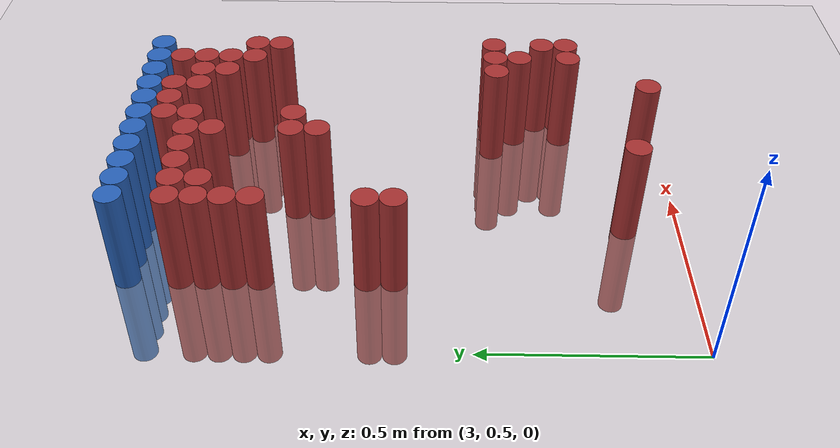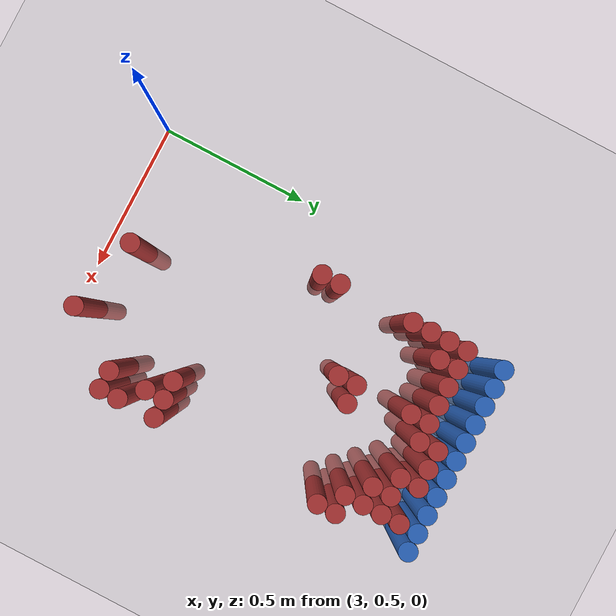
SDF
<sdf version="1.6">
 <world name="default">
  <model name="ground_plane">
   <static>1</static>
   <link name="link">
    <collision name="collision">
     <geometry><plane><normal>0 0 1</normal><size>100 100</size></plane></geometry>
     <surface><friction><ode><mu>100</mu><mu2>50</mu2></ode></friction></surface>
    </collision>
    <visual name="visual">
     <cast_shadows>0</cast_shadows>
     <geometry><plane><normal>0 0 1</normal><size>100 100</size></plane></geometry>
     <material>
      <script><uri>file://media/materials/scripts/gazebo.material</uri><name>Gazebo/Grey</name></script>
     </material>
    </visual>
   </link>
  </model>
  <model name="unit_cylinder_114">
   <static>1</static>
   <pose>3.210000 1.770000 0.000000 0.000000 0.000000 0.000000</pose>
   <link name="link">
    <inertial>
     <mass>1</mass>
     <inertia><ixx>0.145833</ixx><ixy>0</ixy><ixz>0</ixz><iyy>0.145833</iyy><iyz>0</iyz><izz>0.125</izz></inertia>
    </inertial>
    <collision name="collision">
     <geometry><cylinder><radius>0.030000</radius><length>0.5</length></cylinder></geometry>
    </collision>
    <visual name="visual">
     <geometry><cylinder><radius>0.030000</radius><length>0.5</length></cylinder></geometry>
     <material>
      <ambient>0.152000 0.379000 0.720000 1</ambient>
      <diffuse>0.152000 0.379000 0.720000 1</diffuse>
     </material>
     <material>
      <script><name>Gazebo/Grey</name><uri>file://media/materials/scripts/gazebo.material</uri></script>
     </material>
    </visual>
   </link>
  </model>
  <model name="unit_cylinder_115">
   <static>1</static>
   <pose>3.270000 1.770000 0.000000 0.000000 0.000000 0.000000</pose>
   <link name="link">
    <inertial>
     <mass>1</mass>
     <inertia><ixx>0.145833</ixx><ixy>0</ixy><ixz>0</ixz><iyy>0.145833</iyy><iyz>0</iyz><izz>0.125</izz></inertia>
    </inertial>
    <collision name="collision">
     <geometry><cylinder><radius>0.030000</radius><length>0.5</length></cylinder></geometry>
    </collision>
    <visual name="visual">
     <geometry><cylinder><radius>0.030000</radius><length>0.5</length></cylinder></geometry>
     <material>
      <ambient>0.152000 0.379000 0.720000 1</ambient>
      <diffuse>0.152000 0.379000 0.720000 1</diffuse>
     </material>
     <material>
      <script><name>Gazebo/Grey</name><uri>file://media/materials/scripts/gazebo.material</uri></script>
     </material>
    </visual>
   </link>
  </model>
  <model name="unit_cylinder_116">
   <static>1</static>
   <pose>3.330000 1.770000 0.000000 0.000000 0.000000 0.000000</pose>
   <link name="link">
    <inertial>
     <mass>1</mass>
     <inertia><ixx>0.145833</ixx><ixy>0</ixy><ixz>0</ixz><iyy>0.145833</iyy><iyz>0</iyz><izz>0.125</izz></inertia>
    </inertial>
    <collision name="collision">
     <geometry><cylinder><radius>0.030000</radius><length>0.5</length></cylinder></geometry>
    </collision>
    <visual name="visual">
     <geometry><cylinder><radius>0.030000</radius><length>0.5</length></cylinder></geometry>
     <material>
      <ambient>0.152000 0.379000 0.720000 1</ambient>
      <diffuse>0.152000 0.379000 0.720000 1</diffuse>
     </material>
     <material>
      <script><name>Gazebo/Grey</name><uri>file://media/materials/scripts/gazebo.material</uri></script>
     </material>
    </visual>
   </link>
  </model>
  <model name="unit_cylinder_117">
   <static>1</static>
   <pose>3.390000 1.770000 0.000000 0.000000 0.000000 0.000000</pose>
   <link name="link">
    <inertial>
     <mass>1</mass>
     <inertia><ixx>0.145833</ixx><ixy>0</ixy><ixz>0</ixz><iyy>0.145833</iyy><iyz>0</iyz><izz>0.125</izz></inertia>
    </inertial>
    <collision name="collision">
     <geometry><cylinder><radius>0.030000</radius><length>0.5</length></cylinder></geometry>
    </collision>
    <visual name="visual">
     <geometry><cylinder><radius>0.030000</radius><length>0.5</length></cylinder></geometry>
     <material>
      <ambient>0.152000 0.379000 0.720000 1</ambient>
      <diffuse>0.152000 0.379000 0.720000 1</diffuse>
     </material>
     <material>
      <script><name>Gazebo/Grey</name><uri>file://media/materials/scripts/gazebo.material</uri></script>
     </material>
    </visual>
   </link>
  </model>
  <model name="unit_cylinder_118">
   <static>1</static>
   <pose>3.450000 1.770000 0.000000 0.000000 0.000000 0.000000</pose>
   <link name="link">
    <inertial>
     <mass>1</mass>
     <inertia><ixx>0.145833</ixx><ixy>0</ixy><ixz>0</ixz><iyy>0.145833</iyy><iyz>0</iyz><izz>0.125</izz></inertia>
    </inertial>
    <collision name="collision">
     <geometry><cylinder><radius>0.030000</radius><length>0.5</length></cylinder></geometry>
    </collision>
    <visual name="visual">
     <geometry><cylinder><radius>0.030000</radius><length>0.5</length></cylinder></geometry>
     <material>
      <ambient>0.152000 0.379000 0.720000 1</ambient>
      <diffuse>0.152000 0.379000 0.720000 1</diffuse>
     </material>
     <material>
      <script><name>Gazebo/Grey</name><uri>file://media/materials/scripts/gazebo.material</uri></script>
     </material>
    </visual>
   </link>
  </model>
  <model name="unit_cylinder_119">
   <static>1</static>
   <pose>3.510000 1.770000 0.000000 0.000000 0.000000 0.000000</pose>
   <link name="link">
    <inertial>
     <mass>1</mass>
     <inertia><ixx>0.145833</ixx><ixy>0</ixy><ixz>0</ixz><iyy>0.145833</iyy><iyz>0</iyz><izz>0.125</izz></inertia>
    </inertial>
    <collision name="collision">
     <geometry><cylinder><radius>0.030000</radius><length>0.5</length></cylinder></geometry>
    </collision>
    <visual name="visual">
     <geometry><cylinder><radius>0.030000</radius><length>0.5</length></cylinder></geometry>
     <material>
      <ambient>0.152000 0.379000 0.720000 1</ambient>
      <diffuse>0.152000 0.379000 0.720000 1</diffuse>
     </material>
     <material>
      <script><name>Gazebo/Grey</name><uri>file://media/materials/scripts/gazebo.material</uri></script>
     </material>
    </visual>
   </link>
  </model>
  <model name="unit_cylinder_120">
   <static>1</static>
   <pose>3.570000 1.770000 0.000000 0.000000 0.000000 0.000000</pose>
   <link name="link">
    <inertial>
     <mass>1</mass>
     <inertia><ixx>0.145833</ixx><ixy>0</ixy><ixz>0</ixz><iyy>0.145833</iyy><iyz>0</iyz><izz>0.125</izz></inertia>
    </inertial>
    <collision name="collision">
     <geometry><cylinder><radius>0.030000</radius><length>0.5</length></cylinder></geometry>
    </collision>
    <visual name="visual">
     <geometry><cylinder><radius>0.030000</radius><length>0.5</length></cylinder></geometry>
     <material>
      <ambient>0.152000 0.379000 0.720000 1</ambient>
      <diffuse>0.152000 0.379000 0.720000 1</diffuse>
     </material>
     <material>
      <script><name>Gazebo/Grey</name><uri>file://media/materials/scripts/gazebo.material</uri></script>
     </material>
    </visual>
   </link>
  </model>
  <model name="unit_cylinder_121">
   <static>1</static>
   <pose>3.630000 1.770000 0.000000 0.000000 0.000000 0.000000</pose>
   <link name="link">
    <inertial>
     <mass>1</mass>
     <inertia><ixx>0.145833</ixx><ixy>0</ixy><ixz>0</ixz><iyy>0.145833</iyy><iyz>0</iyz><izz>0.125</izz></inertia>
    </inertial>
    <collision name="collision">
     <geometry><cylinder><radius>0.030000</radius><length>0.5</length></cylinder></geometry>
    </collision>
    <visual name="visual">
     <geometry><cylinder><radius>0.030000</radius><length>0.5</length></cylinder></geometry>
     <material>
      <ambient>0.152000 0.379000 0.720000 1</ambient>
      <diffuse>0.152000 0.379000 0.720000 1</diffuse>
     </material>
     <material>
      <script><name>Gazebo/Grey</name><uri>file://media/materials/scripts/gazebo.material</uri></script>
     </material>
    </visual>
   </link>
  </model>
  <model name="unit_cylinder_122">
   <static>1</static>
   <pose>3.690000 1.770000 0.000000 0.000000 0.000000 0.000000</pose>
   <link name="link">
    <inertial>
     <mass>1</mass>
     <inertia><ixx>0.145833</ixx><ixy>0</ixy><ixz>0</ixz><iyy>0.145833</iyy><iyz>0</iyz><izz>0.125</izz></inertia>
    </inertial>
    <collision name="collision">
     <geometry><cylinder><radius>0.030000</radius><length>0.5</length></cylinder></geometry>
    </collision>
    <visual name="visual">
     <geometry><cylinder><radius>0.030000</radius><length>0.5</length></cylinder></geometry>
     <material>
      <ambient>0.152000 0.379000 0.720000 1</ambient>
      <diffuse>0.152000 0.379000 0.720000 1</diffuse>
     </material>
     <material>
      <script><name>Gazebo/Grey</name><uri>file://media/materials/scripts/gazebo.material</uri></script>
     </material>
    </visual>
   </link>
  </model>
  <model name="unit_cylinder_123">
   <static>1</static>
   <pose>3.750000 1.770000 0.000000 0.000000 0.000000 0.000000</pose>
   <link name="link">
    <inertial>
     <mass>1</mass>
     <inertia><ixx>0.145833</ixx><ixy>0</ixy><ixz>0</ixz><iyy>0.145833</iyy><iyz>0</iyz><izz>0.125</izz></inertia>
    </inertial>
    <collision name="collision">
     <geometry><cylinder><radius>0.030000</radius><length>0.5</length></cylinder></geometry>
    </collision>
    <visual name="visual">
     <geometry><cylinder><radius>0.030000</radius><length>0.5</length></cylinder></geometry>
     <material>
      <ambient>0.152000 0.379000 0.720000 1</ambient>
      <diffuse>0.152000 0.379000 0.720000 1</diffuse>
     </material>
     <material>
      <script><name>Gazebo/Grey</name><uri>file://media/materials/scripts/gazebo.material</uri></script>
     </material>
    </visual>
   </link>
  </model>
  <model name="unit_cylinder_124">
   <static>1</static>
   <pose>3.810000 1.770000 0.000000 0.000000 0.000000 0.000000</pose>
   <link name="link">
    <inertial>
     <mass>1</mass>
     <inertia><ixx>0.145833</ixx><ixy>0</ixy><ixz>0</ixz><iyy>0.145833</iyy><iyz>0</iyz><izz>0.125</izz></inertia>
    </inertial>
    <collision name="collision">
     <geometry><cylinder><radius>0.030000</radius><length>0.5</length></cylinder></geometry>
    </collision>
    <visual name="visual">
     <geometry><cylinder><radius>0.030000</radius><length>0.5</length></cylinder></geometry>
     <material>
      <ambient>0.152000 0.379000 0.720000 1</ambient>
      <diffuse>0.152000 0.379000 0.720000 1</diffuse>
     </material>
     <material>
      <script><name>Gazebo/Grey</name><uri>file://media/materials/scripts/gazebo.material</uri></script>
     </material>
    </visual>
   </link>
  </model>
  <model name="unit_cylinder_135">
   <static>1</static>
   <pose>3.510000 1.710000 0.000000 0.000000 0.000000 0.000000</pose>
   <link name="link">
    <inertial>
     <mass>1</mass>
     <inertia><ixx>0.145833</ixx><ixy>0</ixy><ixz>0</ixz><iyy>0.145833</iyy><iyz>0</iyz><izz>0.125</izz></inertia>
    </inertial>
    <collision name="collision">
     <geometry><cylinder><radius>0.030000</radius><length>0.5</length></cylinder></geometry>
    </collision>
    <visual name="visual">
     <geometry><cylinder><radius>0.030000</radius><length>0.5</length></cylinder></geometry>
     <material>
      <ambient>0.648000 0.192000 0.192000 1</ambient>
      <diffuse>0.648000 0.192000 0.192000 1</diffuse>
     </material>
     <material>
      <script><name>Gazebo/Grey</name><uri>file://media/materials/scripts/gazebo.material</uri></script>
     </material>
    </visual>
   </link>
  </model>
  <model name="unit_cylinder_136">
   <static>1</static>
   <pose>3.570000 1.710000 0.000000 0.000000 0.000000 0.000000</pose>
   <link name="link">
    <inertial>
     <mass>1</mass>
     <inertia><ixx>0.145833</ixx><ixy>0</ixy><ixz>0</ixz><iyy>0.145833</iyy><iyz>0</iyz><izz>0.125</izz></inertia>
    </inertial>
    <collision name="collision">
     <geometry><cylinder><radius>0.030000</radius><length>0.5</length></cylinder></geometry>
    </collision>
    <visual name="visual">
     <geometry><cylinder><radius>0.030000</radius><length>0.5</length></cylinder></geometry>
     <material>
      <ambient>0.648000 0.192000 0.192000 1</ambient>
      <diffuse>0.648000 0.192000 0.192000 1</diffuse>
     </material>
     <material>
      <script><name>Gazebo/Grey</name><uri>file://media/materials/scripts/gazebo.material</uri></script>
     </material>
    </visual>
   </link>
  </model>
  <model name="unit_cylinder_137">
   <static>1</static>
   <pose>3.630000 1.710000 0.000000 0.000000 0.000000 0.000000</pose>
   <link name="link">
    <inertial>
     <mass>1</mass>
     <inertia><ixx>0.145833</ixx><ixy>0</ixy><ixz>0</ixz><iyy>0.145833</iyy><iyz>0</iyz><izz>0.125</izz></inertia>
    </inertial>
    <collision name="collision">
     <geometry><cylinder><radius>0.030000</radius><length>0.5</length></cylinder></geometry>
    </collision>
    <visual name="visual">
     <geometry><cylinder><radius>0.030000</radius><length>0.5</length></cylinder></geometry>
     <material>
      <ambient>0.648000 0.192000 0.192000 1</ambient>
      <diffuse>0.648000 0.192000 0.192000 1</diffuse>
     </material>
     <material>
      <script><name>Gazebo/Grey</name><uri>file://media/materials/scripts/gazebo.material</uri></script>
     </material>
    </visual>
   </link>
  </model>
  <model name="unit_cylinder_138">
   <static>1</static>
   <pose>3.750000 1.710000 0.000000 0.000000 0.000000 0.000000</pose>
   <link name="link">
    <inertial>
     <mass>1</mass>
     <inertia><ixx>0.145833</ixx><ixy>0</ixy><ixz>0</ixz><iyy>0.145833</iyy><iyz>0</iyz><izz>0.125</izz></inertia>
    </inertial>
    <collision name="collision">
     <geometry><cylinder><radius>0.030000</radius><length>0.5</length></cylinder></geometry>
    </collision>
    <visual name="visual">
     <geometry><cylinder><radius>0.030000</radius><length>0.5</length></cylinder></geometry>
     <material>
      <ambient>0.648000 0.192000 0.192000 1</ambient>
      <diffuse>0.648000 0.192000 0.192000 1</diffuse>
     </material>
     <material>
      <script><name>Gazebo/Grey</name><uri>file://media/materials/scripts/gazebo.material</uri></script>
     </material>
    </visual>
   </link>
  </model>
  <model name="unit_cylinder_147">
   <static>1</static>
   <pose>3.210000 1.650000 0.000000 0.000000 0.000000 0.000000</pose>
   <link name="link">
    <inertial>
     <mass>1</mass>
     <inertia><ixx>0.145833</ixx><ixy>0</ixy><ixz>0</ixz><iyy>0.145833</iyy><iyz>0</iyz><izz>0.125</izz></inertia>
    </inertial>
    <collision name="collision">
     <geometry><cylinder><radius>0.030000</radius><length>0.5</length></cylinder></geometry>
    </collision>
    <visual name="visual">
     <geometry><cylinder><radius>0.030000</radius><length>0.5</length></cylinder></geometry>
     <material>
      <ambient>0.648000 0.192000 0.192000 1</ambient>
      <diffuse>0.648000 0.192000 0.192000 1</diffuse>
     </material>
     <material>
      <script><name>Gazebo/Grey</name><uri>file://media/materials/scripts/gazebo.material</uri></script>
     </material>
    </visual>
   </link>
  </model>
  <model name="unit_cylinder_148">
   <static>1</static>
   <pose>3.270000 1.650000 0.000000 0.000000 0.000000 0.000000</pose>
   <link name="link">
    <inertial>
     <mass>1</mass>
     <inertia><ixx>0.145833</ixx><ixy>0</ixy><ixz>0</ixz><iyy>0.145833</iyy><iyz>0</iyz><izz>0.125</izz></inertia>
    </inertial>
    <collision name="collision">
     <geometry><cylinder><radius>0.030000</radius><length>0.5</length></cylinder></geometry>
    </collision>
    <visual name="visual">
     <geometry><cylinder><radius>0.030000</radius><length>0.5</length></cylinder></geometry>
     <material>
      <ambient>0.648000 0.192000 0.192000 1</ambient>
      <diffuse>0.648000 0.192000 0.192000 1</diffuse>
     </material>
     <material>
      <script><name>Gazebo/Grey</name><uri>file://media/materials/scripts/gazebo.material</uri></script>
     </material>
    </visual>
   </link>
  </model>
  <model name="unit_cylinder_149">
   <static>1</static>
   <pose>3.330000 1.650000 0.000000 0.000000 0.000000 0.000000</pose>
   <link name="link">
    <inertial>
     <mass>1</mass>
     <inertia><ixx>0.145833</ixx><ixy>0</ixy><ixz>0</ixz><iyy>0.145833</iyy><iyz>0</iyz><izz>0.125</izz></inertia>
    </inertial>
    <collision name="collision">
     <geometry><cylinder><radius>0.030000</radius><length>0.5</length></cylinder></geometry>
    </collision>
    <visual name="visual">
     <geometry><cylinder><radius>0.030000</radius><length>0.5</length></cylinder></geometry>
     <material>
      <ambient>0.648000 0.192000 0.192000 1</ambient>
      <diffuse>0.648000 0.192000 0.192000 1</diffuse>
     </material>
     <material>
      <script><name>Gazebo/Grey</name><uri>file://media/materials/scripts/gazebo.material</uri></script>
     </material>
    </visual>
   </link>
  </model>
  <model name="unit_cylinder_150">
   <static>1</static>
   <pose>3.390000 1.650000 0.000000 0.000000 0.000000 0.000000</pose>
   <link name="link">
    <inertial>
     <mass>1</mass>
     <inertia><ixx>0.145833</ixx><ixy>0</ixy><ixz>0</ixz><iyy>0.145833</iyy><iyz>0</iyz><izz>0.125</izz></inertia>
    </inertial>
    <collision name="collision">
     <geometry><cylinder><radius>0.030000</radius><length>0.5</length></cylinder></geometry>
    </collision>
    <visual name="visual">
     <geometry><cylinder><radius>0.030000</radius><length>0.5</length></cylinder></geometry>
     <material>
      <ambient>0.648000 0.192000 0.192000 1</ambient>
      <diffuse>0.648000 0.192000 0.192000 1</diffuse>
     </material>
     <material>
      <script><name>Gazebo/Grey</name><uri>file://media/materials/scripts/gazebo.material</uri></script>
     </material>
    </visual>
   </link>
  </model>
  <model name="unit_cylinder_151">
   <static>1</static>
   <pose>3.450000 1.650000 0.000000 0.000000 0.000000 0.000000</pose>
   <link name="link">
    <inertial>
     <mass>1</mass>
     <inertia><ixx>0.145833</ixx><ixy>0</ixy><ixz>0</ixz><iyy>0.145833</iyy><iyz>0</iyz><izz>0.125</izz></inertia>
    </inertial>
    <collision name="collision">
     <geometry><cylinder><radius>0.030000</radius><length>0.5</length></cylinder></geometry>
    </collision>
    <visual name="visual">
     <geometry><cylinder><radius>0.030000</radius><length>0.5</length></cylinder></geometry>
     <material>
      <ambient>0.648000 0.192000 0.192000 1</ambient>
      <diffuse>0.648000 0.192000 0.192000 1</diffuse>
     </material>
     <material>
      <script><name>Gazebo/Grey</name><uri>file://media/materials/scripts/gazebo.material</uri></script>
     </material>
    </visual>
   </link>
  </model>
  <model name="unit_cylinder_152">
   <static>1</static>
   <pose>3.510000 1.650000 0.000000 0.000000 0.000000 0.000000</pose>
   <link name="link">
    <inertial>
     <mass>1</mass>
     <inertia><ixx>0.145833</ixx><ixy>0</ixy><ixz>0</ixz><iyy>0.145833</iyy><iyz>0</iyz><izz>0.125</izz></inertia>
    </inertial>
    <collision name="collision">
     <geometry><cylinder><radius>0.030000</radius><length>0.5</length></cylinder></geometry>
    </collision>
    <visual name="visual">
     <geometry><cylinder><radius>0.030000</radius><length>0.5</length></cylinder></geometry>
     <material>
      <ambient>0.648000 0.192000 0.192000 1</ambient>
      <diffuse>0.648000 0.192000 0.192000 1</diffuse>
     </material>
     <material>
      <script><name>Gazebo/Grey</name><uri>file://media/materials/scripts/gazebo.material</uri></script>
     </material>
    </visual>
   </link>
  </model>
  <model name="unit_cylinder_153">
   <static>1</static>
   <pose>3.630000 1.650000 0.000000 0.000000 0.000000 0.000000</pose>
   <link name="link">
    <inertial>
     <mass>1</mass>
     <inertia><ixx>0.145833</ixx><ixy>0</ixy><ixz>0</ixz><iyy>0.145833</iyy><iyz>0</iyz><izz>0.125</izz></inertia>
    </inertial>
    <collision name="collision">
     <geometry><cylinder><radius>0.030000</radius><length>0.5</length></cylinder></geometry>
    </collision>
    <visual name="visual">
     <geometry><cylinder><radius>0.030000</radius><length>0.5</length></cylinder></geometry>
     <material>
      <ambient>0.648000 0.192000 0.192000 1</ambient>
      <diffuse>0.648000 0.192000 0.192000 1</diffuse>
     </material>
     <material>
      <script><name>Gazebo/Grey</name><uri>file://media/materials/scripts/gazebo.material</uri></script>
     </material>
    </visual>
   </link>
  </model>
  <model name="unit_cylinder_154">
   <static>1</static>
   <pose>3.690000 1.650000 0.000000 0.000000 0.000000 0.000000</pose>
   <link name="link">
    <inertial>
     <mass>1</mass>
     <inertia><ixx>0.145833</ixx><ixy>0</ixy><ixz>0</ixz><iyy>0.145833</iyy><iyz>0</iyz><izz>0.125</izz></inertia>
    </inertial>
    <collision name="collision">
     <geometry><cylinder><radius>0.030000</radius><length>0.5</length></cylinder></geometry>
    </collision>
    <visual name="visual">
     <geometry><cylinder><radius>0.030000</radius><length>0.5</length></cylinder></geometry>
     <material>
      <ambient>0.648000 0.192000 0.192000 1</ambient>
      <diffuse>0.648000 0.192000 0.192000 1</diffuse>
     </material>
     <material>
      <script><name>Gazebo/Grey</name><uri>file://media/materials/scripts/gazebo.material</uri></script>
     </material>
    </visual>
   </link>
  </model>
  <model name="unit_cylinder_155">
   <static>1</static>
   <pose>3.750000 1.650000 0.000000 0.000000 0.000000 0.000000</pose>
   <link name="link">
    <inertial>
     <mass>1</mass>
     <inertia><ixx>0.145833</ixx><ixy>0</ixy><ixz>0</ixz><iyy>0.145833</iyy><iyz>0</iyz><izz>0.125</izz></inertia>
    </inertial>
    <collision name="collision">
     <geometry><cylinder><radius>0.030000</radius><length>0.5</length></cylinder></geometry>
    </collision>
    <visual name="visual">
     <geometry><cylinder><radius>0.030000</radius><length>0.5</length></cylinder></geometry>
     <material>
      <ambient>0.648000 0.192000 0.192000 1</ambient>
      <diffuse>0.648000 0.192000 0.192000 1</diffuse>
     </material>
     <material>
      <script><name>Gazebo/Grey</name><uri>file://media/materials/scripts/gazebo.material</uri></script>
     </material>
    </visual>
   </link>
  </model>
  <model name="unit_cylinder_161">
   <static>1</static>
   <pose>3.210000 1.590000 0.000000 0.000000 0.000000 0.000000</pose>
   <link name="link">
    <inertial>
     <mass>1</mass>
     <inertia><ixx>0.145833</ixx><ixy>0</ixy><ixz>0</ixz><iyy>0.145833</iyy><iyz>0</iyz><izz>0.125</izz></inertia>
    </inertial>
    <collision name="collision">
     <geometry><cylinder><radius>0.030000</radius><length>0.5</length></cylinder></geometry>
    </collision>
    <visual name="visual">
     <geometry><cylinder><radius>0.030000</radius><length>0.5</length></cylinder></geometry>
     <material>
      <ambient>0.648000 0.192000 0.192000 1</ambient>
      <diffuse>0.648000 0.192000 0.192000 1</diffuse>
     </material>
     <material>
      <script><name>Gazebo/Grey</name><uri>file://media/materials/scripts/gazebo.material</uri></script>
     </material>
    </visual>
   </link>
  </model>
  <model name="unit_cylinder_162">
   <static>1</static>
   <pose>3.270000 1.590000 0.000000 0.000000 0.000000 0.000000</pose>
   <link name="link">
    <inertial>
     <mass>1</mass>
     <inertia><ixx>0.145833</ixx><ixy>0</ixy><ixz>0</ixz><iyy>0.145833</iyy><iyz>0</iyz><izz>0.125</izz></inertia>
    </inertial>
    <collision name="collision">
     <geometry><cylinder><radius>0.030000</radius><length>0.5</length></cylinder></geometry>
    </collision>
    <visual name="visual">
     <geometry><cylinder><radius>0.030000</radius><length>0.5</length></cylinder></geometry>
     <material>
      <ambient>0.648000 0.192000 0.192000 1</ambient>
      <diffuse>0.648000 0.192000 0.192000 1</diffuse>
     </material>
     <material>
      <script><name>Gazebo/Grey</name><uri>file://media/materials/scripts/gazebo.material</uri></script>
     </material>
    </visual>
   </link>
  </model>
  <model name="unit_cylinder_163">
   <static>1</static>
   <pose>3.450000 1.590000 0.000000 0.000000 0.000000 0.000000</pose>
   <link name="link">
    <inertial>
     <mass>1</mass>
     <inertia><ixx>0.145833</ixx><ixy>0</ixy><ixz>0</ixz><iyy>0.145833</iyy><iyz>0</iyz><izz>0.125</izz></inertia>
    </inertial>
    <collision name="collision">
     <geometry><cylinder><radius>0.030000</radius><length>0.5</length></cylinder></geometry>
    </collision>
    <visual name="visual">
     <geometry><cylinder><radius>0.030000</radius><length>0.5</length></cylinder></geometry>
     <material>
      <ambient>0.648000 0.192000 0.192000 1</ambient>
      <diffuse>0.648000 0.192000 0.192000 1</diffuse>
     </material>
     <material>
      <script><name>Gazebo/Grey</name><uri>file://media/materials/scripts/gazebo.material</uri></script>
     </material>
    </visual>
   </link>
  </model>
  <model name="unit_cylinder_164">
   <static>1</static>
   <pose>3.690000 1.590000 0.000000 0.000000 0.000000 0.000000</pose>
   <link name="link">
    <inertial>
     <mass>1</mass>
     <inertia><ixx>0.145833</ixx><ixy>0</ixy><ixz>0</ixz><iyy>0.145833</iyy><iyz>0</iyz><izz>0.125</izz></inertia>
    </inertial>
    <collision name="collision">
     <geometry><cylinder><radius>0.030000</radius><length>0.5</length></cylinder></geometry>
    </collision>
    <visual name="visual">
     <geometry><cylinder><radius>0.030000</radius><length>0.5</length></cylinder></geometry>
     <material>
      <ambient>0.648000 0.192000 0.192000 1</ambient>
      <diffuse>0.648000 0.192000 0.192000 1</diffuse>
     </material>
     <material>
      <script><name>Gazebo/Grey</name><uri>file://media/materials/scripts/gazebo.material</uri></script>
     </material>
    </visual>
   </link>
  </model>
  <model name="unit_cylinder_165">
   <static>1</static>
   <pose>3.750000 1.590000 0.000000 0.000000 0.000000 0.000000</pose>
   <link name="link">
    <inertial>
     <mass>1</mass>
     <inertia><ixx>0.145833</ixx><ixy>0</ixy><ixz>0</ixz><iyy>0.145833</iyy><iyz>0</iyz><izz>0.125</izz></inertia>
    </inertial>
    <collision name="collision">
     <geometry><cylinder><radius>0.030000</radius><length>0.5</length></cylinder></geometry>
    </collision>
    <visual name="visual">
     <geometry><cylinder><radius>0.030000</radius><length>0.5</length></cylinder></geometry>
     <material>
      <ambient>0.648000 0.192000 0.192000 1</ambient>
      <diffuse>0.648000 0.192000 0.192000 1</diffuse>
     </material>
     <material>
      <script><name>Gazebo/Grey</name><uri>file://media/materials/scripts/gazebo.material</uri></script>
     </material>
    </visual>
   </link>
  </model>
  <model name="unit_cylinder_166">
   <static>1</static>
   <pose>3.210000 1.530000 0.000000 0.000000 0.000000 0.000000</pose>
   <link name="link">
    <inertial>
     <mass>1</mass>
     <inertia><ixx>0.145833</ixx><ixy>0</ixy><ixz>0</ixz><iyy>0.145833</iyy><iyz>0</iyz><izz>0.125</izz></inertia>
    </inertial>
    <collision name="collision">
     <geometry><cylinder><radius>0.030000</radius><length>0.5</length></cylinder></geometry>
    </collision>
    <visual name="visual">
     <geometry><cylinder><radius>0.030000</radius><length>0.5</length></cylinder></geometry>
     <material>
      <ambient>0.648000 0.192000 0.192000 1</ambient>
      <diffuse>0.648000 0.192000 0.192000 1</diffuse>
     </material>
     <material>
      <script><name>Gazebo/Grey</name><uri>file://media/materials/scripts/gazebo.material</uri></script>
     </material>
    </visual>
   </link>
  </model>
  <model name="unit_cylinder_167">
   <static>1</static>
   <pose>3.750000 1.530000 0.000000 0.000000 0.000000 0.000000</pose>
   <link name="link">
    <inertial>
     <mass>1</mass>
     <inertia><ixx>0.145833</ixx><ixy>0</ixy><ixz>0</ixz><iyy>0.145833</iyy><iyz>0</iyz><izz>0.125</izz></inertia>
    </inertial>
    <collision name="collision">
     <geometry><cylinder><radius>0.030000</radius><length>0.5</length></cylinder></geometry>
    </collision>
    <visual name="visual">
     <geometry><cylinder><radius>0.030000</radius><length>0.5</length></cylinder></geometry>
     <material>
      <ambient>0.648000 0.192000 0.192000 1</ambient>
      <diffuse>0.648000 0.192000 0.192000 1</diffuse>
     </material>
     <material>
      <script><name>Gazebo/Grey</name><uri>file://media/materials/scripts/gazebo.material</uri></script>
     </material>
    </visual>
   </link>
  </model>
  <model name="unit_cylinder_168">
   <static>1</static>
   <pose>3.810000 1.530000 0.000000 0.000000 0.000000 0.000000</pose>
   <link name="link">
    <inertial>
     <mass>1</mass>
     <inertia><ixx>0.145833</ixx><ixy>0</ixy><ixz>0</ixz><iyy>0.145833</iyy><iyz>0</iyz><izz>0.125</izz></inertia>
    </inertial>
    <collision name="collision">
     <geometry><cylinder><radius>0.030000</radius><length>0.5</length></cylinder></geometry>
    </collision>
    <visual name="visual">
     <geometry><cylinder><radius>0.030000</radius><length>0.5</length></cylinder></geometry>
     <material>
      <ambient>0.648000 0.192000 0.192000 1</ambient>
      <diffuse>0.648000 0.192000 0.192000 1</diffuse>
     </material>
     <material>
      <script><name>Gazebo/Grey</name><uri>file://media/materials/scripts/gazebo.material</uri></script>
     </material>
    </visual>
   </link>
  </model>
  <model name="unit_cylinder_170">
   <static>1</static>
   <pose>3.210000 1.470000 0.000000 0.000000 0.000000 0.000000</pose>
   <link name="link">
    <inertial>
     <mass>1</mass>
     <inertia><ixx>0.145833</ixx><ixy>0</ixy><ixz>0</ixz><iyy>0.145833</iyy><iyz>0</iyz><izz>0.125</izz></inertia>
    </inertial>
    <collision name="collision">
     <geometry><cylinder><radius>0.030000</radius><length>0.5</length></cylinder></geometry>
    </collision>
    <visual name="visual">
     <geometry><cylinder><radius>0.030000</radius><length>0.5</length></cylinder></geometry>
     <material>
      <ambient>0.648000 0.192000 0.192000 1</ambient>
      <diffuse>0.648000 0.192000 0.192000 1</diffuse>
     </material>
     <material>
      <script><name>Gazebo/Grey</name><uri>file://media/materials/scripts/gazebo.material</uri></script>
     </material>
    </visual>
   </link>
  </model>
  <model name="unit_cylinder_171">
   <static>1</static>
   <pose>3.810000 1.470000 0.000000 0.000000 0.000000 0.000000</pose>
   <link name="link">
    <inertial>
     <mass>1</mass>
     <inertia><ixx>0.145833</ixx><ixy>0</ixy><ixz>0</ixz><iyy>0.145833</iyy><iyz>0</iyz><izz>0.125</izz></inertia>
    </inertial>
    <collision name="collision">
     <geometry><cylinder><radius>0.030000</radius><length>0.5</length></cylinder></geometry>
    </collision>
    <visual name="visual">
     <geometry><cylinder><radius>0.030000</radius><length>0.5</length></cylinder></geometry>
     <material>
      <ambient>0.648000 0.192000 0.192000 1</ambient>
      <diffuse>0.648000 0.192000 0.192000 1</diffuse>
     </material>
     <material>
      <script><name>Gazebo/Grey</name><uri>file://media/materials/scripts/gazebo.material</uri></script>
     </material>
    </visual>
   </link>
  </model>
  <model name="unit_cylinder_172">
   <static>1</static>
   <pose>3.450000 1.410000 0.000000 0.000000 0.000000 0.000000</pose>
   <link name="link">
    <inertial>
     <mass>1</mass>
     <inertia><ixx>0.145833</ixx><ixy>0</ixy><ixz>0</ixz><iyy>0.145833</iyy><iyz>0</iyz><izz>0.125</izz></inertia>
    </inertial>
    <collision name="collision">
     <geometry><cylinder><radius>0.030000</radius><length>0.5</length></cylinder></geometry>
    </collision>
    <visual name="visual">
     <geometry><cylinder><radius>0.030000</radius><length>0.5</length></cylinder></geometry>
     <material>
      <ambient>0.648000 0.192000 0.192000 1</ambient>
      <diffuse>0.648000 0.192000 0.192000 1</diffuse>
     </material>
     <material>
      <script><name>Gazebo/Grey</name><uri>file://media/materials/scripts/gazebo.material</uri></script>
     </material>
    </visual>
   </link>
  </model>
  <model name="unit_cylinder_173">
   <static>1</static>
   <pose>3.510000 1.410000 0.000000 0.000000 0.000000 0.000000</pose>
   <link name="link">
    <inertial>
     <mass>1</mass>
     <inertia><ixx>0.145833</ixx><ixy>0</ixy><ixz>0</ixz><iyy>0.145833</iyy><iyz>0</iyz><izz>0.125</izz></inertia>
    </inertial>
    <collision name="collision">
     <geometry><cylinder><radius>0.030000</radius><length>0.5</length></cylinder></geometry>
    </collision>
    <visual name="visual">
     <geometry><cylinder><radius>0.030000</radius><length>0.5</length></cylinder></geometry>
     <material>
      <ambient>0.648000 0.192000 0.192000 1</ambient>
      <diffuse>0.648000 0.192000 0.192000 1</diffuse>
     </material>
     <material>
      <script><name>Gazebo/Grey</name><uri>file://media/materials/scripts/gazebo.material</uri></script>
     </material>
    </visual>
   </link>
  </model>
  <model name="unit_cylinder_174">
   <static>1</static>
   <pose>3.450000 1.350000 0.000000 0.000000 0.000000 0.000000</pose>
   <link name="link">
    <inertial>
     <mass>1</mass>
     <inertia><ixx>0.145833</ixx><ixy>0</ixy><ixz>0</ixz><iyy>0.145833</iyy><iyz>0</iyz><izz>0.125</izz></inertia>
    </inertial>
    <collision name="collision">
     <geometry><cylinder><radius>0.030000</radius><length>0.5</length></cylinder></geometry>
    </collision>
    <visual name="visual">
     <geometry><cylinder><radius>0.030000</radius><length>0.5</length></cylinder></geometry>
     <material>
      <ambient>0.648000 0.192000 0.192000 1</ambient>
      <diffuse>0.648000 0.192000 0.192000 1</diffuse>
     </material>
     <material>
      <script><name>Gazebo/Grey</name><uri>file://media/materials/scripts/gazebo.material</uri></script>
     </material>
    </visual>
   </link>
  </model>
  <model name="unit_cylinder_175">
   <static>1</static>
   <pose>3.210000 1.230000 0.000000 0.000000 0.000000 0.000000</pose>
   <link name="link">
    <inertial>
     <mass>1</mass>
     <inertia><ixx>0.145833</ixx><ixy>0</ixy><ixz>0</ixz><iyy>0.145833</iyy><iyz>0</iyz><izz>0.125</izz></inertia>
    </inertial>
    <collision name="collision">
     <geometry><cylinder><radius>0.030000</radius><length>0.5</length></cylinder></geometry>
    </collision>
    <visual name="visual">
     <geometry><cylinder><radius>0.030000</radius><length>0.5</length></cylinder></geometry>
     <material>
      <ambient>0.648000 0.192000 0.192000 1</ambient>
      <diffuse>0.648000 0.192000 0.192000 1</diffuse>
     </material>
     <material>
      <script><name>Gazebo/Grey</name><uri>file://media/materials/scripts/gazebo.material</uri></script>
     </material>
    </visual>
   </link>
  </model>
  <model name="unit_cylinder_177">
   <static>1</static>
   <pose>3.210000 1.170000 0.000000 0.000000 0.000000 0.000000</pose>
   <link name="link">
    <inertial>
     <mass>1</mass>
     <inertia><ixx>0.145833</ixx><ixy>0</ixy><ixz>0</ixz><iyy>0.145833</iyy><iyz>0</iyz><izz>0.125</izz></inertia>
    </inertial>
    <collision name="collision">
     <geometry><cylinder><radius>0.030000</radius><length>0.5</length></cylinder></geometry>
    </collision>
    <visual name="visual">
     <geometry><cylinder><radius>0.030000</radius><length>0.5</length></cylinder></geometry>
     <material>
      <ambient>0.648000 0.192000 0.192000 1</ambient>
      <diffuse>0.648000 0.192000 0.192000 1</diffuse>
     </material>
     <material>
      <script><name>Gazebo/Grey</name><uri>file://media/materials/scripts/gazebo.material</uri></script>
     </material>
    </visual>
   </link>
  </model>
  <model name="unit_cylinder_188">
   <static>1</static>
   <pose>3.690000 0.930000 0.000000 0.000000 0.000000 0.000000</pose>
   <link name="link">
    <inertial>
     <mass>1</mass>
     <inertia><ixx>0.145833</ixx><ixy>0</ixy><ixz>0</ixz><iyy>0.145833</iyy><iyz>0</iyz><izz>0.125</izz></inertia>
    </inertial>
    <collision name="collision">
     <geometry><cylinder><radius>0.030000</radius><length>0.5</length></cylinder></geometry>
    </collision>
    <visual name="visual">
     <geometry><cylinder><radius>0.030000</radius><length>0.5</length></cylinder></geometry>
     <material>
      <ambient>0.648000 0.192000 0.192000 1</ambient>
      <diffuse>0.648000 0.192000 0.192000 1</diffuse>
     </material>
     <material>
      <script><name>Gazebo/Grey</name><uri>file://media/materials/scripts/gazebo.material</uri></script>
     </material>
    </visual>
   </link>
  </model>
  <model name="unit_cylinder_189">
   <static>1</static>
   <pose>3.750000 0.930000 0.000000 0.000000 0.000000 0.000000</pose>
   <link name="link">
    <inertial>
     <mass>1</mass>
     <inertia><ixx>0.145833</ixx><ixy>0</ixy><ixz>0</ixz><iyy>0.145833</iyy><iyz>0</iyz><izz>0.125</izz></inertia>
    </inertial>
    <collision name="collision">
     <geometry><cylinder><radius>0.030000</radius><length>0.5</length></cylinder></geometry>
    </collision>
    <visual name="visual">
     <geometry><cylinder><radius>0.030000</radius><length>0.5</length></cylinder></geometry>
     <material>
      <ambient>0.648000 0.192000 0.192000 1</ambient>
      <diffuse>0.648000 0.192000 0.192000 1</diffuse>
     </material>
     <material>
      <script><name>Gazebo/Grey</name><uri>file://media/materials/scripts/gazebo.material</uri></script>
     </material>
    </visual>
   </link>
  </model>
  <model name="unit_cylinder_190">
   <static>1</static>
   <pose>3.810000 0.930000 0.000000 0.000000 0.000000 0.000000</pose>
   <link name="link">
    <inertial>
     <mass>1</mass>
     <inertia><ixx>0.145833</ixx><ixy>0</ixy><ixz>0</ixz><iyy>0.145833</iyy><iyz>0</iyz><izz>0.125</izz></inertia>
    </inertial>
    <collision name="collision">
     <geometry><cylinder><radius>0.030000</radius><length>0.5</length></cylinder></geometry>
    </collision>
    <visual name="visual">
     <geometry><cylinder><radius>0.030000</radius><length>0.5</length></cylinder></geometry>
     <material>
      <ambient>0.648000 0.192000 0.192000 1</ambient>
      <diffuse>0.648000 0.192000 0.192000 1</diffuse>
     </material>
     <material>
      <script><name>Gazebo/Grey</name><uri>file://media/materials/scripts/gazebo.material</uri></script>
     </material>
    </visual>
   </link>
  </model>
  <model name="unit_cylinder_197">
   <static>1</static>
   <pose>3.750000 0.870000 0.000000 0.000000 0.000000 0.000000</pose>
   <link name="link">
    <inertial>
     <mass>1</mass>
     <inertia><ixx>0.145833</ixx><ixy>0</ixy><ixz>0</ixz><iyy>0.145833</iyy><iyz>0</iyz><izz>0.125</izz></inertia>
    </inertial>
    <collision name="collision">
     <geometry><cylinder><radius>0.030000</radius><length>0.5</length></cylinder></geometry>
    </collision>
    <visual name="visual">
     <geometry><cylinder><radius>0.030000</radius><length>0.5</length></cylinder></geometry>
     <material>
      <ambient>0.648000 0.192000 0.192000 1</ambient>
      <diffuse>0.648000 0.192000 0.192000 1</diffuse>
     </material>
     <material>
      <script><name>Gazebo/Grey</name><uri>file://media/materials/scripts/gazebo.material</uri></script>
     </material>
    </visual>
   </link>
  </model>
  <model name="unit_cylinder_205">
   <static>1</static>
   <pose>3.810000 0.810000 0.000000 0.000000 0.000000 0.000000</pose>
   <link name="link">
    <inertial>
     <mass>1</mass>
     <inertia><ixx>0.145833</ixx><ixy>0</ixy><ixz>0</ixz><iyy>0.145833</iyy><iyz>0</iyz><izz>0.125</izz></inertia>
    </inertial>
    <collision name="collision">
     <geometry><cylinder><radius>0.030000</radius><length>0.5</length></cylinder></geometry>
    </collision>
    <visual name="visual">
     <geometry><cylinder><radius>0.030000</radius><length>0.5</length></cylinder></geometry>
     <material>
      <ambient>0.648000 0.192000 0.192000 1</ambient>
      <diffuse>0.648000 0.192000 0.192000 1</diffuse>
     </material>
     <material>
      <script><name>Gazebo/Grey</name><uri>file://media/materials/scripts/gazebo.material</uri></script>
     </material>
    </visual>
   </link>
  </model>
  <model name="unit_cylinder_212">
   <static>1</static>
   <pose>3.750000 0.750000 0.000000 0.000000 0.000000 0.000000</pose>
   <link name="link">
    <inertial>
     <mass>1</mass>
     <inertia><ixx>0.145833</ixx><ixy>0</ixy><ixz>0</ixz><iyy>0.145833</iyy><iyz>0</iyz><izz>0.125</izz></inertia>
    </inertial>
    <collision name="collision">
     <geometry><cylinder><radius>0.030000</radius><length>0.5</length></cylinder></geometry>
    </collision>
    <visual name="visual">
     <geometry><cylinder><radius>0.030000</radius><length>0.5</length></cylinder></geometry>
     <material>
      <ambient>0.648000 0.192000 0.192000 1</ambient>
      <diffuse>0.648000 0.192000 0.192000 1</diffuse>
     </material>
     <material>
      <script><name>Gazebo/Grey</name><uri>file://media/materials/scripts/gazebo.material</uri></script>
     </material>
    </visual>
   </link>
  </model>
  <model name="unit_cylinder_213">
   <static>1</static>
   <pose>3.810000 0.750000 0.000000 0.000000 0.000000 0.000000</pose>
   <link name="link">
    <inertial>
     <mass>1</mass>
     <inertia><ixx>0.145833</ixx><ixy>0</ixy><ixz>0</ixz><iyy>0.145833</iyy><iyz>0</iyz><izz>0.125</izz></inertia>
    </inertial>
    <collision name="collision">
     <geometry><cylinder><radius>0.030000</radius><length>0.5</length></cylinder></geometry>
    </collision>
    <visual name="visual">
     <geometry><cylinder><radius>0.030000</radius><length>0.5</length></cylinder></geometry>
     <material>
      <ambient>0.648000 0.192000 0.192000 1</ambient>
      <diffuse>0.648000 0.192000 0.192000 1</diffuse>
     </material>
     <material>
      <script><name>Gazebo/Grey</name><uri>file://media/materials/scripts/gazebo.material</uri></script>
     </material>
    </visual>
   </link>
  </model>
  <model name="unit_cylinder_219">
   <static>1</static>
   <pose>3.390000 0.630000 0.000000 0.000000 0.000000 0.000000</pose>
   <link name="link">
    <inertial>
     <mass>1</mass>
     <inertia><ixx>0.145833</ixx><ixy>0</ixy><ixz>0</ixz><iyy>0.145833</iyy><iyz>0</iyz><izz>0.125</izz></inertia>
    </inertial>
    <collision name="collision">
     <geometry><cylinder><radius>0.030000</radius><length>0.5</length></cylinder></geometry>
    </collision>
    <visual name="visual">
     <geometry><cylinder><radius>0.030000</radius><length>0.5</length></cylinder></geometry>
     <material>
      <ambient>0.648000 0.192000 0.192000 1</ambient>
      <diffuse>0.648000 0.192000 0.192000 1</diffuse>
     </material>
     <material>
      <script><name>Gazebo/Grey</name><uri>file://media/materials/scripts/gazebo.material</uri></script>
     </material>
    </visual>
   </link>
  </model>
  <model name="unit_cylinder_228">
   <static>1</static>
   <pose>3.630000 0.570000 0.000000 0.000000 0.000000 0.000000</pose>
   <link name="link">
    <inertial>
     <mass>1</mass>
     <inertia><ixx>0.145833</ixx><ixy>0</ixy><ixz>0</ixz><iyy>0.145833</iyy><iyz>0</iyz><izz>0.125</izz></inertia>
    </inertial>
    <collision name="collision">
     <geometry><cylinder><radius>0.030000</radius><length>0.5</length></cylinder></geometry>
    </collision>
    <visual name="visual">
     <geometry><cylinder><radius>0.030000</radius><length>0.5</length></cylinder></geometry>
     <material>
      <ambient>0.648000 0.192000 0.192000 1</ambient>
      <diffuse>0.648000 0.192000 0.192000 1</diffuse>
     </material>
     <material>
      <script><name>Gazebo/Grey</name><uri>file://media/materials/scripts/gazebo.material</uri></script>
     </material>
    </visual>
   </link>
  </model>
 </world>
</sdf>
